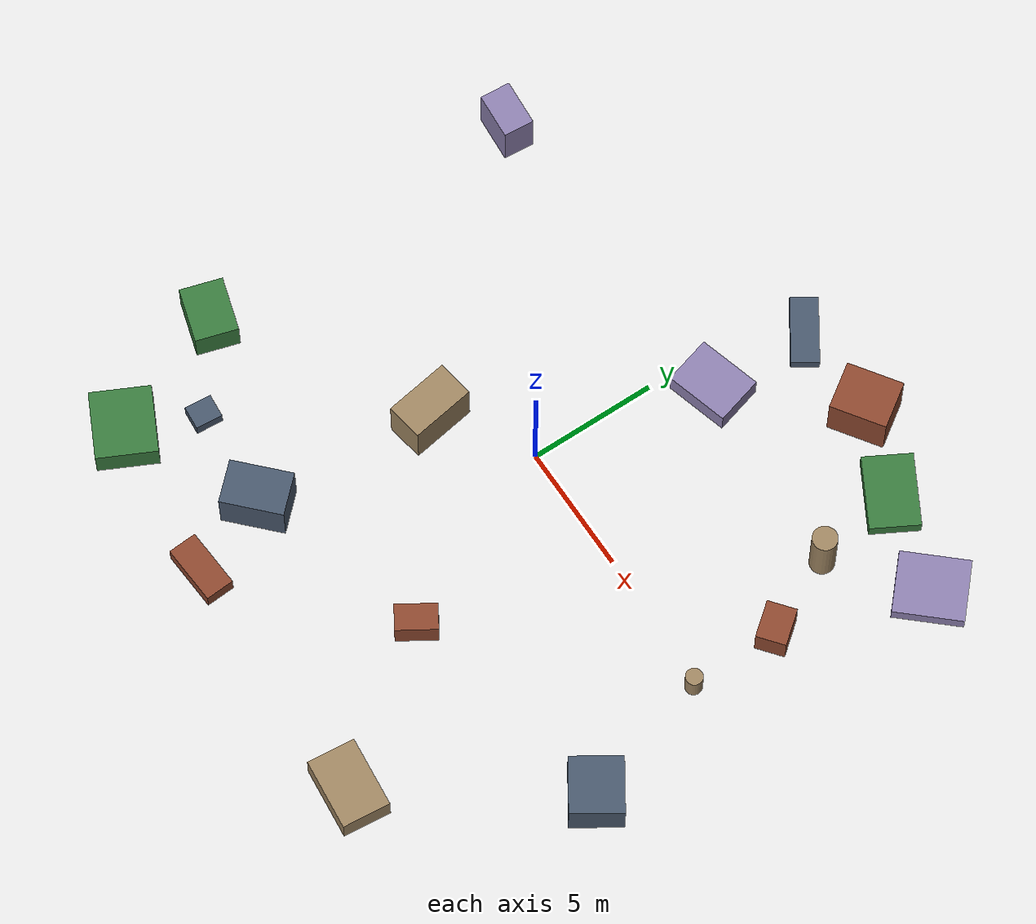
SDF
<sdf version="1.10">
 <world name="robotx_task1_uav_view">
  <gravity>0 0 -9.81</gravity>
  <physics name="physics" type="ode">
   <max_step_size>0.002</max_step_size>
   <real_time_factor>1.0</real_time_factor>
  </physics>
  <scene>
   <ambient>0.27 0.27 0.27 1.0</ambient>
   <background>0.62 0.75 0.92 1.0</background>
   <shadows>true</shadows>
   <grid>false</grid>
  </scene>
  <light name="sun" type="directional">
   <pose>0 0 300 0 0 0</pose>
   <diffuse>1.00 0.98 0.94 1.0</diffuse>
   <specular>1.00 1.00 1.00 1.0</specular>
   <direction>0.26 -0.12 -1.0</direction>
   <attenuation>
    <range>2500</range>
    <constant>0.85</constant>
    <linear>0.001</linear>
    <quadratic>0.00005</quadratic>
   </attenuation>
  </light>
  <plugin filename="gz-sim-physics-system" name="gz::sim::systems::Physics"/>
  <plugin filename="gz-sim-user-commands-system" name="gz::sim::systems::UserCommands"/>
  <plugin filename="gz-sim-scene-broadcaster-system" name="gz::sim::systems::SceneBroadcaster"/>
  <plugin filename="gz-sim-sensors-system" name="gz::sim::systems::Sensors">
   <render_engine>ogre2</render_engine>
  </plugin>
  <model name="scene_clutter_box_000">
   <static>true</static>
   <pose>7.167 -12.754 0.518 0 0 -0.092300</pose>
   <link name="link">
    <visual name="v">
     <geometry><box><size>2.768 1.863 0.995</size></box></geometry>
     <material><ambient>0.45 0.38 0.32 1.0</ambient><diffuse>0.62 0.52 0.38 1.0</diffuse></material>
    </visual>
   </link>
  </model>
  <model name="scene_clutter_box_001">
   <static>true</static>
   <pose>12.233 -5.579 0.779 0 0 -0.576013</pose>
   <link name="link">
    <visual name="v">
     <geometry><box><size>2.162 2.013 1.518</size></box></geometry>
     <material><ambient>0.18 0.22 0.28 1.0</ambient><diffuse>0.28 0.34 0.42 1.0</diffuse></material>
    </visual>
   </link>
  </model>
  <model name="scene_clutter_box_002">
   <static>true</static>
   <pose>-2.864 -12.635 0.348 0 0 -1.501686</pose>
   <link name="link">
    <visual name="v">
     <geometry><box><size>1.120 2.318 0.656</size></box></geometry>
     <material><ambient>0.35 0.16 0.12 1.0</ambient><diffuse>0.55 0.28 0.18 1.0</diffuse></material>
    </visual>
   </link>
  </model>
  <model name="scene_clutter_box_003">
   <static>true</static>
   <pose>8.483 9.870 0.295 0 0 2.635401</pose>
   <link name="link">
    <visual name="v">
     <geometry><box><size>2.849 1.931 0.550</size></box></geometry>
     <material><ambient>0.12 0.30 0.14 1.0</ambient><diffuse>0.22 0.48 0.24 1.0</diffuse></material>
    </visual>
   </link>
  </model>
  <model name="scene_clutter_box_004">
   <static>true</static>
   <pose>-11.652 6.442 0.971 0 0 -1.642698</pose>
   <link name="link">
    <visual name="v">
     <geometry><box><size>1.203 1.831 1.902</size></box></geometry>
     <material><ambient>0.40 0.35 0.50 1.0</ambient><diffuse>0.55 0.50 0.68 1.0</diffuse></material>
    </visual>
   </link>
  </model>
  <model name="scene_clutter_cyl_005">
   <static>true</static>
   <pose>9.226 6.307 1.181 0 0 1.406019</pose>
   <link name="link">
    <visual name="v">
     <geometry><cylinder><radius>0.478</radius><length>2.262</length></cylinder></geometry>
     <material><ambient>0.45 0.38 0.32 1.0</ambient><diffuse>0.62 0.52 0.38 1.0</diffuse></material>
    </visual>
   </link>
  </model>
  <model name="scene_clutter_box_006">
   <static>true</static>
   <pose>-3.959 -9.504 0.886 0 0 -0.805545</pose>
   <link name="link">
    <visual name="v">
     <geometry><box><size>1.688 2.425 1.733</size></box></geometry>
     <material><ambient>0.18 0.22 0.28 1.0</ambient><diffuse>0.28 0.34 0.42 1.0</diffuse></material>
    </visual>
   </link>
  </model>
  <model name="scene_clutter_box_007">
   <static>true</static>
   <pose>10.601 3.298 0.603 0 0 -2.465719</pose>
   <link name="link">
    <visual name="v">
     <geometry><box><size>1.149 1.456 1.165</size></box></geometry>
     <material><ambient>0.35 0.16 0.12 1.0</ambient><diffuse>0.55 0.28 0.18 1.0</diffuse></material>
    </visual>
   </link>
  </model>
  <model name="scene_clutter_box_008">
   <static>true</static>
   <pose>-9.075 -12.044 0.580 0 0 -2.027830</pose>
   <link name="link">
    <visual name="v">
     <geometry><box><size>2.327 2.644 1.120</size></box></geometry>
     <material><ambient>0.12 0.30 0.14 1.0</ambient><diffuse>0.22 0.48 0.24 1.0</diffuse></material>
    </visual>
   </link>
  </model>
  <model name="scene_clutter_box_009">
   <static>true</static>
   <pose>1.375 6.881 0.457 0 0 -1.295479</pose>
   <link name="link">
    <visual name="v">
     <geometry><box><size>1.925 2.508 0.873</size></box></geometry>
     <material><ambient>0.40 0.35 0.50 1.0</ambient><diffuse>0.55 0.50 0.68 1.0</diffuse></material>
    </visual>
   </link>
  </model>
  <model name="scene_clutter_box_010">
   <static>true</static>
   <pose>-3.329 -2.433 0.940 0 0 1.734683</pose>
   <link name="link">
    <visual name="v">
     <geometry><box><size>2.553 1.466 1.840</size></box></geometry>
     <material><ambient>0.45 0.38 0.32 1.0</ambient><diffuse>0.62 0.52 0.38 1.0</diffuse></material>
    </visual>
   </link>
  </model>
  <model name="scene_clutter_box_011">
   <static>true</static>
   <pose>1.418 10.952 0.257 0 0 0.983782</pose>
   <link name="link">
    <visual name="v">
     <geometry><box><size>1.068 2.621 0.474</size></box></geometry>
     <material><ambient>0.18 0.22 0.28 1.0</ambient><diffuse>0.28 0.34 0.42 1.0</diffuse></material>
    </visual>
   </link>
  </model>
  <model name="scene_clutter_box_012">
   <static>true</static>
   <pose>3.217 -7.312 0.554 0 0 1.013745</pose>
   <link name="link">
    <visual name="v">
     <geometry><box><size>1.601 1.017 1.068</size></box></geometry>
     <material><ambient>0.35 0.16 0.12 1.0</ambient><diffuse>0.55 0.28 0.18 1.0</diffuse></material>
    </visual>
   </link>
  </model>
  <model name="scene_clutter_box_013">
   <static>true</static>
   <pose>-11.113 -7.062 0.647 0 0 -0.283993</pose>
   <link name="link">
    <visual name="v">
     <geometry><box><size>2.169 1.672 1.254</size></box></geometry>
     <material><ambient>0.12 0.30 0.14 1.0</ambient><diffuse>0.22 0.48 0.24 1.0</diffuse></material>
    </visual>
   </link>
  </model>
  <model name="scene_clutter_box_014">
   <static>true</static>
   <pose>12.349 8.940 0.297 0 0 -2.303291</pose>
   <link name="link">
    <visual name="v">
     <geometry><box><size>2.661 2.398 0.554</size></box></geometry>
     <material><ambient>0.40 0.35 0.50 1.0</ambient><diffuse>0.55 0.50 0.68 1.0</diffuse></material>
    </visual>
   </link>
  </model>
  <model name="scene_clutter_cyl_015">
   <static>true</static>
   <pose>10.634 -0.292 0.552 0 0 0.607870</pose>
   <link name="link">
    <visual name="v">
     <geometry><cylinder><radius>0.328</radius><length>1.003</length></cylinder></geometry>
     <material><ambient>0.45 0.38 0.32 1.0</ambient><diffuse>0.62 0.52 0.38 1.0</diffuse></material>
    </visual>
   </link>
  </model>
  <model name="scene_clutter_box_016">
   <static>true</static>
   <pose>-8.051 -9.276 0.265 0 0 1.493481</pose>
   <link name="link">
    <visual name="v">
     <geometry><box><size>1.050 0.934 0.490</size></box></geometry>
     <material><ambient>0.18 0.22 0.28 1.0</ambient><diffuse>0.28 0.34 0.42 1.0</diffuse></material>
    </visual>
   </link>
  </model>
  <model name="scene_clutter_box_017">
   <static>true</static>
   <pose>5.300 10.918 0.955 0 0 -0.970701</pose>
   <link name="link">
    <visual name="v">
     <geometry><box><size>1.874 2.204 1.869</size></box></geometry>
     <material><ambient>0.35 0.16 0.12 1.0</ambient><diffuse>0.55 0.28 0.18 1.0</diffuse></material>
    </visual>
   </link>
  </model>
  <model name="uav_dataset_camera">
   <static>false</static>
   <pose>0 0 26 0 0 0</pose>
   <plugin filename="librobotx_overhead_motion_plugin.dylib" name="robotx::OverheadMotionPlugin">
    <radius_x_m>11.37713</radius_x_m>
    <radius_y_m>6.67961</radius_y_m>
    <angular_speed_rad_s>0.050793</angular_speed_rad_s>
    <phase_rad>4.028923</phase_rad>
    <z_wobble_m>0.06238</z_wobble_m>
    <z_wobble_hz>0.05775</z_wobble_hz>
    <z_wobble_phase_rad>3.581616</z_wobble_phase_rad>
   </plugin>
   <link name="camera_link">
    <gravity>false</gravity>
    <sensor name="top_down_rgb" type="camera">
     <always_on>true</always_on>
     <update_rate>20</update_rate>
     <pose>0 0 0 0 1.57079632679 0</pose>
     <camera>
      <horizontal_fov>1.05</horizontal_fov>
      <image><width>1920</width><height>1080</height><format>R8G8B8</format></image>
      <clip><near>0.2</near><far>600</far></clip>
     </camera>
     <topic>/robotx/uav/camera/image_raw</topic>
     <visualize>true</visualize>
    </sensor>
   </link>
  </model>
 </world>
</sdf>
